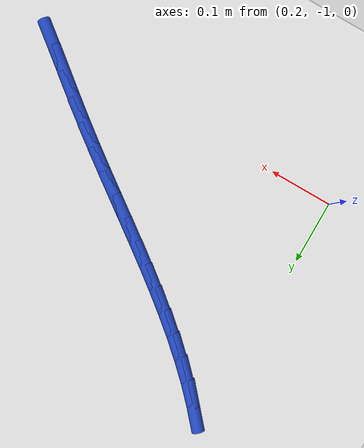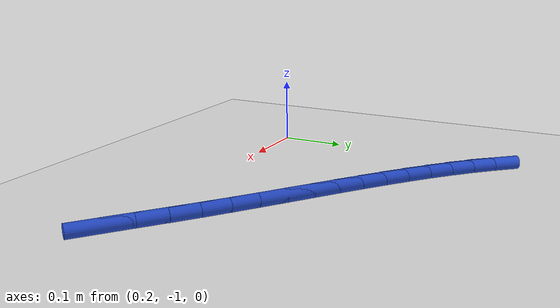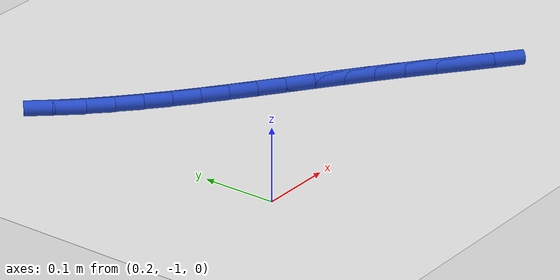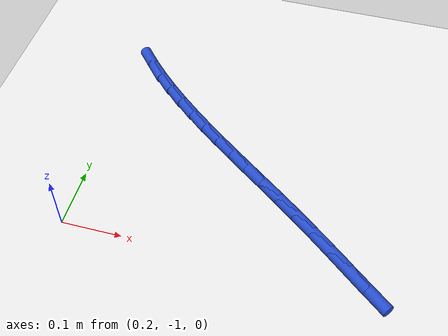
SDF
<sdf version="1.6">
 <world name="default">
  <model name="ground_plane">
   <static>1</static>
   <link name="link">
    <collision name="collision">
     <geometry><plane><normal>0 0 1</normal><size>100 100</size></plane></geometry>
     <surface><friction><ode><mu>100</mu><mu2>50</mu2></ode></friction></surface>
    </collision>
    <visual name="visual">
     <cast_shadows>0</cast_shadows>
     <geometry><plane><normal>0 0 1</normal><size>100 100</size></plane></geometry>
     <material>
      <script><uri>file://media/materials/scripts/gazebo.material</uri><name>Gazebo/WhiteGlow</name></script>
     </material>
    </visual>
   </link>
  </model>
  <model name="line">
   <link name="link_167">
    <pose>0.683446704416076 -1.0003750819075463 0.01 0 1.57 -0.675266514051219</pose>
    <collision name="collision">
     <geometry><cylinder><radius>0.01</radius><length>0.08</length></cylinder></geometry>
    </collision>
    <visual name="visual">
     <material>
      <script><name>Gazebo/Blue</name><uri>file://media/materials/scripts/gazebo.material</uri></script>
     </material>
     <geometry><cylinder><radius>0.01</radius><length>0.08</length></cylinder></geometry>
    </visual>
   </link>
   <link name="link_168">
    <pose>0.6505812402470277 -0.9740543706681786 0.01 0 1.57 -0.6818653979584783</pose>
    <collision name="collision">
     <geometry><cylinder><radius>0.01</radius><length>0.08</length></cylinder></geometry>
    </collision>
    <visual name="visual">
     <material>
      <script><name>Gazebo/Blue</name><uri>file://media/materials/scripts/gazebo.material</uri></script>
     </material>
     <geometry><cylinder><radius>0.01</radius><length>0.08</length></cylinder></geometry>
    </visual>
   </link>
   <link name="link_169">
    <pose>0.6179174683031237 -0.9475395118711081 0.01 0 1.57 -0.6736807209206591</pose>
    <collision name="collision">
     <geometry><cylinder><radius>0.01</radius><length>0.08</length></cylinder></geometry>
    </collision>
    <visual name="visual">
     <material>
      <script><name>Gazebo/Blue</name><uri>file://media/materials/scripts/gazebo.material</uri></script>
     </material>
     <geometry><cylinder><radius>0.01</radius><length>0.08</length></cylinder></geometry>
    </visual>
   </link>
   <link name="link_170">
    <pose>0.5853793650550065 -0.9215655573958983 0.01 0 1.57 -0.6574030952951385</pose>
    <collision name="collision">
     <geometry><cylinder><radius>0.01</radius><length>0.08</length></cylinder></geometry>
    </collision>
    <visual name="visual">
     <material>
      <script><name>Gazebo/Blue</name><uri>file://media/materials/scripts/gazebo.material</uri></script>
     </material>
     <geometry><cylinder><radius>0.01</radius><length>0.08</length></cylinder></geometry>
    </visual>
   </link>
   <link name="link_171">
    <pose>0.5529511691448259 -0.8965325417771027 0.01 0 1.57 -0.644573206258162</pose>
    <collision name="collision">
     <geometry><cylinder><radius>0.01</radius><length>0.08</length></cylinder></geometry>
    </collision>
    <visual name="visual">
     <material>
      <script><name>Gazebo/Blue</name><uri>file://media/materials/scripts/gazebo.material</uri></script>
     </material>
     <geometry><cylinder><radius>0.01</radius><length>0.08</length></cylinder></geometry>
    </visual>
   </link>
   <link name="link_172">
    <pose>0.5207142040790181 -0.8723007726748501 0.01 0 1.57 -0.6365031835149738</pose>
    <collision name="collision">
     <geometry><cylinder><radius>0.01</radius><length>0.08</length></cylinder></geometry>
    </collision>
    <visual name="visual">
     <material>
      <script><name>Gazebo/Blue</name><uri>file://media/materials/scripts/gazebo.material</uri></script>
     </material>
     <geometry><cylinder><radius>0.01</radius><length>0.08</length></cylinder></geometry>
    </visual>
   </link>
   <link name="link_173">
    <pose>0.48875858998926375 -0.8486816543997727 0.01 0 1.57 -0.6334353061186743</pose>
    <collision name="collision">
     <geometry><cylinder><radius>0.01</radius><length>0.08</length></cylinder></geometry>
    </collision>
    <visual name="visual">
     <material>
      <script><name>Gazebo/Blue</name><uri>file://media/materials/scripts/gazebo.material</uri></script>
     </material>
     <geometry><cylinder><radius>0.01</radius><length>0.08</length></cylinder></geometry>
    </visual>
   </link>
   <link name="link_174">
    <pose>0.45717444700724413 -0.8254865912625036 0.01 0 1.57 -0.6355928688477672</pose>
    <collision name="collision">
     <geometry><cylinder><radius>0.01</radius><length>0.08</length></cylinder></geometry>
    </collision>
    <visual name="visual">
     <material>
      <script><name>Gazebo/Blue</name><uri>file://media/materials/scripts/gazebo.material</uri></script>
     </material>
     <geometry><cylinder><radius>0.01</radius><length>0.08</length></cylinder></geometry>
    </visual>
   </link>
   <link name="link_175">
    <pose>0.4260518952646404 -0.8025269875736748 0.01 0 1.57 -0.6431788342473505</pose>
    <collision name="collision">
     <geometry><cylinder><radius>0.01</radius><length>0.08</length></cylinder></geometry>
    </collision>
    <visual name="visual">
     <material>
      <script><name>Gazebo/Blue</name><uri>file://media/materials/scripts/gazebo.material</uri></script>
     </material>
     <geometry><cylinder><radius>0.01</radius><length>0.08</length></cylinder></geometry>
    </visual>
   </link>
   <link name="link_176">
    <pose>0.3954810548931335 -0.7796142476439197 0.01 0 1.57 -0.6563703045808907</pose>
    <collision name="collision">
     <geometry><cylinder><radius>0.01</radius><length>0.08</length></cylinder></geometry>
    </collision>
    <visual name="visual">
     <material>
      <script><name>Gazebo/Blue</name><uri>file://media/materials/scripts/gazebo.material</uri></script>
     </material>
     <geometry><cylinder><radius>0.01</radius><length>0.08</length></cylinder></geometry>
    </visual>
   </link>
   <link name="link_177">
    <pose>0.36555204602440455 -0.7565597757838706 0.01 0 1.57 -0.6753077671452214</pose>
    <collision name="collision">
     <geometry><cylinder><radius>0.01</radius><length>0.08</length></cylinder></geometry>
    </collision>
    <visual name="visual">
     <material>
      <script><name>Gazebo/Blue</name><uri>file://media/materials/scripts/gazebo.material</uri></script>
     </material>
     <geometry><cylinder><radius>0.01</radius><length>0.08</length></cylinder></geometry>
    </visual>
   </link>
   <link name="link_178">
    <pose>0.3363549887901344 -0.73317497630416 0.01 0 1.57 -0.7000783823154666</pose>
    <collision name="collision">
     <geometry><cylinder><radius>0.01</radius><length>0.08</length></cylinder></geometry>
    </collision>
    <visual name="visual">
     <material>
      <script><name>Gazebo/Blue</name><uri>file://media/materials/scripts/gazebo.material</uri></script>
     </material>
     <geometry><cylinder><radius>0.01</radius><length>0.08</length></cylinder></geometry>
    </visual>
   </link>
   <link name="link_179">
    <pose>0.30798000332200437 -0.7092712535154209 0.01 0 1.57 -0.7306932293615548</pose>
    <collision name="collision">
     <geometry><cylinder><radius>0.01</radius><length>0.08</length></cylinder></geometry>
    </collision>
    <visual name="visual">
     <material>
      <script><name>Gazebo/Blue</name><uri>file://media/materials/scripts/gazebo.material</uri></script>
     </material>
     <geometry><cylinder><radius>0.01</radius><length>0.08</length></cylinder></geometry>
    </visual>
   </link>
   <link name="link_180">
    <pose>0.28051720975169525 -0.6846600117282853 0.01 0 1.57 -0.7670595475718319</pose>
    <collision name="collision">
     <geometry><cylinder><radius>0.01</radius><length>0.08</length></cylinder></geometry>
    </collision>
    <visual name="visual">
     <material>
      <script><name>Gazebo/Blue</name><uri>file://media/materials/scripts/gazebo.material</uri></script>
     </material>
     <geometry><cylinder><radius>0.01</radius><length>0.08</length></cylinder></geometry>
    </visual>
   </link>
   <link name="link_181">
    <pose>0.2540567282108883 -0.6591526552533864 0.01 0 1.57 -0.808950672966525</pose>
    <collision name="collision">
     <geometry><cylinder><radius>0.01</radius><length>0.08</length></cylinder></geometry>
    </collision>
    <visual name="visual">
     <material>
      <script><name>Gazebo/Blue</name><uri>file://media/materials/scripts/gazebo.material</uri></script>
     </material>
     <geometry><cylinder><radius>0.01</radius><length>0.08</length></cylinder></geometry>
    </visual>
   </link>
   <link name="link_182">
    <pose>0.22868867883126445 -0.6325605884013565 0.01 0 1.57 -0.8559784107554781</pose>
    <collision name="collision">
     <geometry><cylinder><radius>0.01</radius><length>0.08</length></cylinder></geometry>
    </collision>
    <visual name="visual">
     <material>
      <script><name>Gazebo/Blue</name><uri>file://media/materials/scripts/gazebo.material</uri></script>
     </material>
     <geometry><cylinder><radius>0.01</radius><length>0.08</length></cylinder></geometry>
    </visual>
   </link>
  </model>
 </world>
</sdf>
